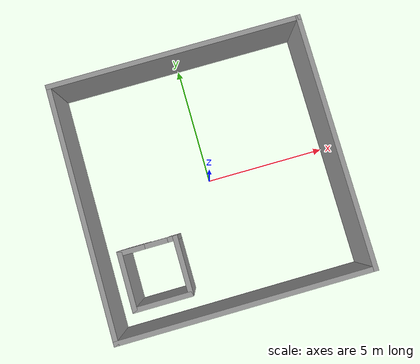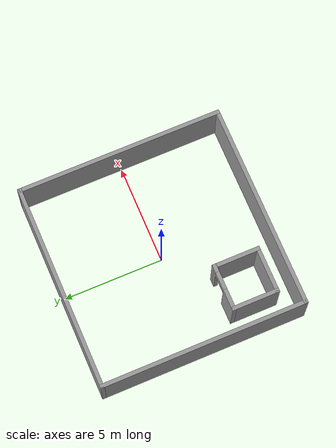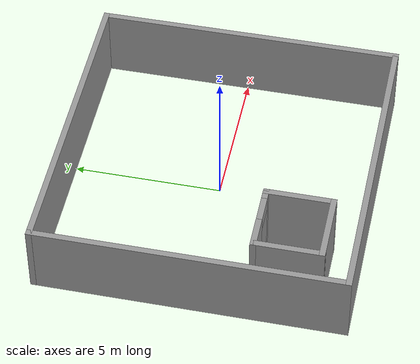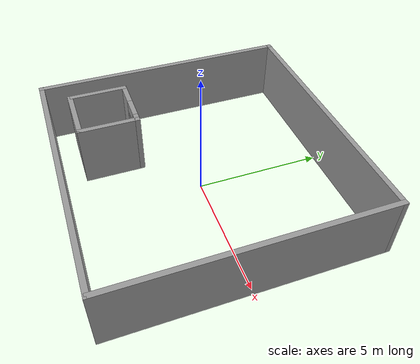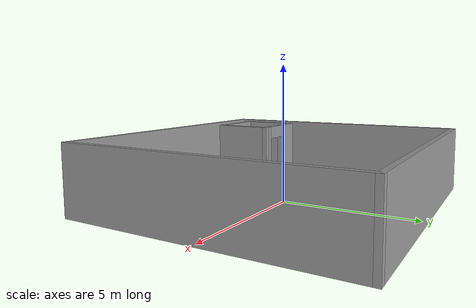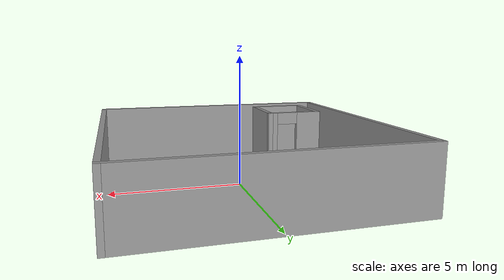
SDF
<?xml version='1.0'?>
<sdf version='1.6'>
  <model name='Room_2'>
    <pose frame=''>0 0 0 0 -0 0</pose>
    <link name='Wall_1'>
      <pose frame=''>-3 -1.9 0 0 -0 3.14159</pose>
      <visual name='Wall_1_Visual_0'>
        <pose frame=''>-0.995169 0 1.25 0 -0 0</pose>
        <geometry>
          <box>
            <size>0.409661 0.2 2.5</size>
          </box>
        </geometry>
        <material>
          <script>
            <uri>file://media/materials/scripts/gazebo.material</uri>
            <name>Gazebo/Grey</name>
          </script>
          <ambient>1 1 1 1</ambient>
        </material>
        <meta>
          <layer>0</layer>
        </meta>
      </visual>
      <collision name='Wall_1_Collision_0'>
        <geometry>
          <box>
            <size>0.409661 0.2 2.5</size>
          </box>
        </geometry>
        <pose frame=''>-0.995169 0 1.25 0 -0 0</pose>
      </collision>
      <visual name='Wall_1_Visual_1'>
        <pose frame=''>0.654831 0 1.25 0 -0 0</pose>
        <geometry>
          <box>
            <size>1.09034 0.2 2.5</size>
          </box>
        </geometry>
        <material>
          <script>
            <uri>file://media/materials/scripts/gazebo.material</uri>
            <name>Gazebo/Grey</name>
          </script>
          <ambient>1 1 1 1</ambient>
        </material>
        <meta>
          <layer>0</layer>
        </meta>
      </visual>
      <collision name='Wall_1_Collision_1'>
        <geometry>
          <box>
            <size>1.09034 0.2 2.5</size>
          </box>
        </geometry>
        <pose frame=''>0.654831 0 1.25 0 -0 0</pose>
      </collision>
      <visual name='Wall_1_Visual_2'>
        <pose frame=''>-0.340339 0 2.25 0 -0 0</pose>
        <geometry>
          <box>
            <size>0.9 0.2 0.5</size>
          </box>
        </geometry>
        <material>
          <script>
            <uri>file://media/materials/scripts/gazebo.material</uri>
            <name>Gazebo/Grey</name>
          </script>
          <ambient>1 1 1 1</ambient>
        </material>
        <meta>
          <layer>0</layer>
        </meta>
      </visual>
      <collision name='Wall_1_Collision_2'>
        <geometry>
          <box>
            <size>0.9 0.2 0.5</size>
          </box>
        </geometry>
        <pose frame=''>-0.340339 0 2.25 0 -0 0</pose>
      </collision>
    </link>
    <link name='Wall_2'>
      <collision name='Wall_2_Collision'>
        <geometry>
          <box>
            <size>2.4 0.2 2.5</size>
          </box>
        </geometry>
        <pose frame=''>0 0 1.25 0 -0 0</pose>
      </collision>
      <visual name='Wall_2_Visual'>
        <pose frame=''>0 0 1.25 0 -0 0</pose>
        <geometry>
          <box>
            <size>2.4 0.2 2.5</size>
          </box>
        </geometry>
        <material>
          <script>
            <uri>file://media/materials/scripts/gazebo.material</uri>
            <name>Gazebo/Grey</name>
          </script>
          <ambient>1 1 1 1</ambient>
        </material>
        <meta>
          <layer>0</layer>
        </meta>
      </visual>
      <pose frame=''>-4.1 -3 0 0 -0 -1.5708</pose>
    </link>
    <link name='Wall_3'>
      <collision name='Wall_3_Collision'>
        <geometry>
          <box>
            <size>2.4 0.2 2.5</size>
          </box>
        </geometry>
        <pose frame=''>0 0 1.25 0 -0 0</pose>
      </collision>
      <visual name='Wall_3_Visual'>
        <pose frame=''>0 0 1.25 0 -0 0</pose>
        <geometry>
          <box>
            <size>2.4 0.2 2.5</size>
          </box>
        </geometry>
        <material>
          <script>
            <uri>file://media/materials/scripts/gazebo.material</uri>
            <name>Gazebo/Grey</name>
          </script>
          <ambient>1 1 1 1</ambient>
        </material>
        <meta>
          <layer>0</layer>
        </meta>
      </visual>
      <pose frame=''>-3 -4.1 0 0 -0 0</pose>
    </link>
    <link name='Wall_4'>
      <collision name='Wall_4_Collision'>
        <geometry>
          <box>
            <size>2.4 0.2 2.5</size>
          </box>
        </geometry>
        <pose frame=''>0 0 1.25 0 -0 0</pose>
      </collision>
      <visual name='Wall_4_Visual'>
        <pose frame=''>0 0 1.25 0 -0 0</pose>
        <geometry>
          <box>
            <size>2.4 0.2 2.5</size>
          </box>
        </geometry>
        <material>
          <script>
            <uri>file://media/materials/scripts/gazebo.material</uri>
            <name>Gazebo/Grey</name>
          </script>
          <ambient>1 1 1 1</ambient>
        </material>
        <meta>
          <layer>0</layer>
        </meta>
      </visual>
      <pose frame=''>-1.9 -3 0 0 -0 1.5708</pose>
    </link>
    <link name='Wall_6'>
      <collision name='Wall_6_Collision'>
        <geometry>
          <box>
            <size>10.4 0.2 2.5</size>
          </box>
        </geometry>
        <pose frame=''>0 0 1.25 0 -0 0</pose>
      </collision>
      <visual name='Wall_6_Visual'>
        <pose frame=''>0 0 1.25 0 -0 0</pose>
        <geometry>
          <box>
            <size>10.4 0.2 2.5</size>
          </box>
        </geometry>
        <material>
          <script>
            <uri>file://media/materials/scripts/gazebo.material</uri>
            <name>Gazebo/Grey</name>
          </script>
          <ambient>1 1 1 1</ambient>
        </material>
        <meta>
          <layer>0</layer>
        </meta>
      </visual>
      <pose frame=''>-5.1 0 0 0 -0 -1.5708</pose>
    </link>
    <link name='Wall_7'>
      <collision name='Wall_7_Collision'>
        <geometry>
          <box>
            <size>10.4 0.2 2.5</size>
          </box>
        </geometry>
        <pose frame=''>0 0 1.25 0 -0 0</pose>
      </collision>
      <visual name='Wall_7_Visual'>
        <pose frame=''>0 0 1.25 0 -0 0</pose>
        <geometry>
          <box>
            <size>10.4 0.2 2.5</size>
          </box>
        </geometry>
        <material>
          <script>
            <uri>file://media/materials/scripts/gazebo.material</uri>
            <name>Gazebo/Grey</name>
          </script>
          <ambient>1 1 1 1</ambient>
        </material>
        <meta>
          <layer>0</layer>
        </meta>
      </visual>
      <pose frame=''>0 -5.1 0 0 -0 0</pose>
    </link>
    <link name='Wall_8'>
      <collision name='Wall_8_Collision'>
        <geometry>
          <box>
            <size>10.4 0.2 2.5</size>
          </box>
        </geometry>
        <pose frame=''>0 0 1.25 0 -0 0</pose>
      </collision>
      <visual name='Wall_8_Visual'>
        <pose frame=''>0 0 1.25 0 -0 0</pose>
        <geometry>
          <box>
            <size>10.4 0.2 2.5</size>
          </box>
        </geometry>
        <material>
          <script>
            <uri>file://media/materials/scripts/gazebo.material</uri>
            <name>Gazebo/Grey</name>
          </script>
          <ambient>1 1 1 1</ambient>
        </material>
        <meta>
          <layer>0</layer>
        </meta>
      </visual>
      <pose frame=''>5.1 0 0 0 -0 1.5708</pose>
    </link>
    <link name='Wall_9'>
      <collision name='Wall_9_Collision'>
        <geometry>
          <box>
            <size>10.4 0.2 2.5</size>
          </box>
        </geometry>
        <pose frame=''>0 0 1.25 0 -0 0</pose>
      </collision>
      <visual name='Wall_9_Visual'>
        <pose frame=''>0 0 1.25 0 -0 0</pose>
        <geometry>
          <box>
            <size>10.4 0.2 2.5</size>
          </box>
        </geometry>
        <material>
          <script>
            <uri>file://media/materials/scripts/gazebo.material</uri>
            <name>Gazebo/Grey</name>
          </script>
          <ambient>1 1 1 1</ambient>
        </material>
        <meta>
          <layer>0</layer>
        </meta>
      </visual>
      <pose frame=''>0 5.1 0 0 -0 3.14159</pose>
    </link>
    <static>1</static>
  </model>
</sdf>
